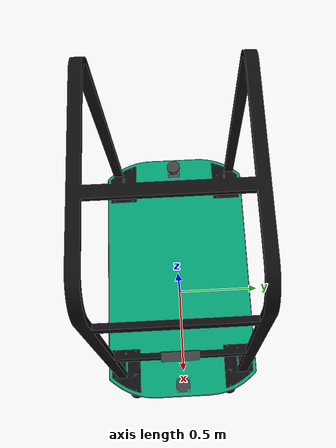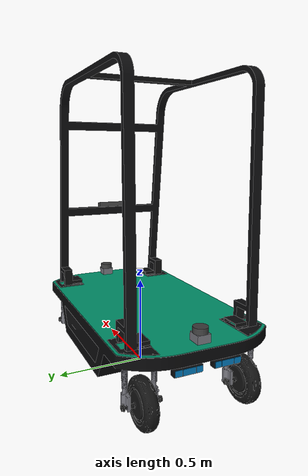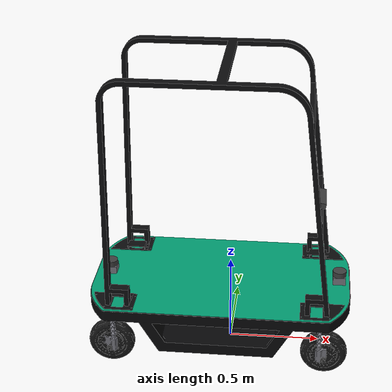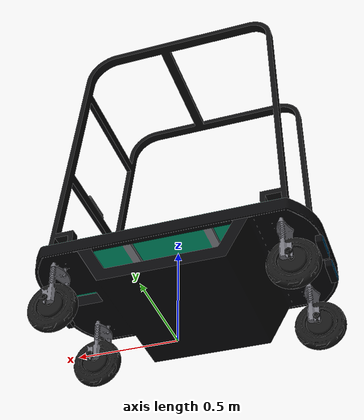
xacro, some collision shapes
<?xml version="1.0"?>
<robot xmlns:xacro="http://www.ros.org/wiki/xacro" name="tadeocar">

  <!-- ==================== PARAMETERS ==================== -->

  <xacro:property name="wheel_radius" value="0.125"/>
  <xacro:property name="wheel_width" value="0.200"/>

  <xacro:property name="front_x" value="0.478"/>
  <xacro:property name="rear_x" value="-0.580"/>
  <xacro:property name="half_track" value="0.275"/>

  <xacro:property name="steer_trail" value="0.05"/>

  <xacro:property name="deck_z" value="0.155"/>
  <xacro:property name="deck_len" value="1.418"/>
  <xacro:property name="deck_width" value="0.815"/>
  <xacro:property name="deck_height" value="0.246"/>
  <xacro:property name="deck_x" value="-0.048"/>   <!-- centre of [-0.757, 0.661] -->
  <!-- Top face of the deck rim, and the tread plate that sits on it. -->
  <xacro:property name="deck_top" value="0.264"/>   <!-- 0.389 m above ground -->
  <xacro:property name="plate_t" value="0.003"/>   <!-- tread plate -->

  <xacro:property name="lidar_x" value="0.60"/>
  <xacro:property name="lidar_z" value="0.325"/>   <!-- 0.450 m above ground -->
  <xacro:property name="rear_lidar_x" value="-0.675"/>
  <xacro:property name="zed_x" value="0.479"/>     <!-- over the lower front cross tube -->
  <xacro:property name="zed_z" value="0.782"/>     <!-- 0.907 m above ground -->
  <xacro:property name="zed_pitch" value="0.17453"/>  <!-- 10 degrees down -->
  <xacro:property name="zed_baseline" value="0.12"/>

  <material name="deck_black"><color rgba="0.03 0.03 0.035 1.0"/></material>
  <material name="wheel_black"><color rgba="0.08 0.08 0.08 1.0"/></material>
  <material name="strut_grey"><color rgba="0.45 0.45 0.48 1.0"/></material>
  <material name="sensor_grey"><color rgba="0.25 0.25 0.25 1.0"/></material>
  <material name="frame_steel"><color rgba="0.05 0.05 0.055 1.0"/></material>

  <!-- ==================== BASE ==================== -->

  <link name="base_footprint"/>

  <joint name="base_footprint_joint" type="fixed">
    <parent link="base_footprint"/>
    <child link="base_link"/>
    <origin xyz="0 0 ${wheel_radius}" rpy="0 0 0"/>
  </joint>

  <link name="base_link">
    <visual name="deck_visual">
      <origin xyz="0 0 ${deck_z}" rpy="0 0 0"/>
      <geometry>
        <mesh filename="package://tadeocar_description/meshes/chassis/chasis_base.dae"
              scale="1 1 1"/>
      </geometry>
      <material name="deck_black"/>
    </visual>
    <collision name="deck_collision">
      <origin xyz="${deck_x} 0 ${deck_z - 0.014}" rpy="0 0 0"/>
      <geometry>
        <box size="${deck_len} ${deck_width} ${deck_height}"/>
      </geometry>
    </collision>
  </link>

  <!-- ==================== DECK PLATE ==================== -->
  <link name="deck_plate_link">
    <visual name="deck_plate_visual">
      <origin xyz="0 0 0" rpy="0 0 0"/>
      <geometry>
        <mesh filename="package://tadeocar_description/meshes/chassis/deck_plate.dae"/>
      </geometry>
    </visual>
    <collision name="deck_plate_collision">
      <origin xyz="-0.05 0 ${deck_top + plate_t / 2}" rpy="0 0 0"/>
      <geometry><box size="1.34 0.76 ${plate_t}"/></geometry>
    </collision>
  </link>

  <joint name="deck_plate_joint" type="fixed">
    <parent link="base_link"/>
    <child link="deck_plate_link"/>
    <origin xyz="0 0 0" rpy="0 0 0"/>
  </joint>

  <!-- ==================== UPPER CHASSIS ==================== -->

  <link name="upper_chassis_link">
    <visual name="upper_chassis_visual">
      <origin xyz="-0.4354 0.3925 0" rpy="${pi/2} 0 ${pi}"/>
      <geometry>
        <mesh filename="package://tadeocar_description/meshes/chassis/chasis.dae"
              scale="0.001 0.001 0.001"/>
      </geometry>
      <material name="frame_steel"/>
    </visual>
    <!-- One box per tube, not the mesh. -->
    <xacro:macro name="arc_box" params="name x y z sx sy sz pitch:=0">
      <collision name="${name}">
        <origin xyz="${x} ${y} ${z}" rpy="0 ${pitch} 0"/>
        <geometry><box size="${sx} ${sy} ${sz}"/></geometry>
      </collision>
    </xacro:macro>
    <xacro:arc_box name="arc_post_rear_left"   x="-0.570" y="0.325"  z="0.6325" sx="0.025" sy="0.050" sz="1.265"/>
    <xacro:arc_box name="arc_post_rear_right"  x="-0.570" y="-0.325" z="0.6325" sx="0.025" sy="0.050" sz="1.265"/>
    <xacro:arc_box name="arc_post_front_left"  x="0.506"  y="0.325"  z="0.6325" sx="0.025" sy="0.050" sz="1.274" pitch="-0.117"/>
    <xacro:arc_box name="arc_post_front_right" x="0.506"  y="-0.325" z="0.6325" sx="0.025" sy="0.050" sz="1.274" pitch="-0.117"/>
    <xacro:arc_box name="arc_roof_left"        x="-0.0695" y="0.3275"  z="1.2525" sx="0.983" sy="0.050" sz="0.025"/>
    <xacro:arc_box name="arc_roof_right"       x="-0.0695" y="-0.3275" z="1.2525" sx="0.983" sy="0.050" sz="0.025"/>
    <xacro:arc_box name="arc_roof_cross"       x="0.026"  y="0" z="1.2525" sx="0.050" sy="0.705" sz="0.025"/>
    <xacro:arc_box name="arc_front_cross_low"  x="0.527"  y="0" z="0.465"  sx="0.031" sy="0.650" sz="0.050"/>
    <xacro:arc_box name="arc_front_cross_high" x="0.459"  y="0" z="1.023"  sx="0.031" sy="0.650" sz="0.050"/>
    <!-- The base is four corner foot plates, not a ring: nothing crosses the
         ends, which is what leaves the LiDAR masts room at x = 0. -->
    <xacro:arc_box name="arc_foot_front_left"  x="0.558"  y="0.310"  z="0.015" sx="0.236" sy="0.156" sz="0.030"/>
    <xacro:arc_box name="arc_foot_front_right" x="0.558"  y="-0.310" z="0.015" sx="0.236" sy="0.156" sz="0.030"/>
    <xacro:arc_box name="arc_foot_rear_left"   x="-0.558" y="0.310"  z="0.015" sx="0.236" sy="0.156" sz="0.030"/>
    <xacro:arc_box name="arc_foot_rear_right"  x="-0.558" y="-0.310" z="0.015" sx="0.236" sy="0.156" sz="0.030"/>
  </link>

  <joint name="upper_chassis_joint" type="fixed">
    <parent link="base_link"/>
    <child link="upper_chassis_link"/>
    <origin xyz="${deck_x} 0 ${deck_top + plate_t}" rpy="0 0 0"/>
  </joint>

  <link name="lamps_link">
    <visual name="headlamp_left_housing">
      <origin xyz="0.655 0.07 0.178" rpy="0 0 0"/>
      <geometry><mesh filename="package://tadeocar_description/meshes/lamps/headlamp_housing.dae"/></geometry>
    </visual>
    <visual name="headlamp_left_headlamp_lens">
      <origin xyz="0.655 0.07 0.178" rpy="0 0 0"/>
      <geometry><mesh filename="package://tadeocar_description/meshes/lamps/headlamp_lens.dae"/></geometry>
    </visual>
    <visual name="headlamp_left_bracket">
      <origin xyz="0.6325 0.07 0.202" rpy="0 0 0"/>
      <geometry><box size="0.020 0.054 0.008"/></geometry>
      <material name="deck_black"/>
    </visual>
    <visual name="turn_front_left_housing">
      <origin xyz="0.655 0.15 0.182" rpy="0 0 0"/>
      <geometry><mesh filename="package://tadeocar_description/meshes/lamps/turn_housing.dae"/></geometry>
    </visual>
    <visual name="turn_front_left_turn_lens">
      <origin xyz="0.655 0.15 0.182" rpy="0 0 0"/>
      <geometry><mesh filename="package://tadeocar_description/meshes/lamps/turn_lens.dae"/></geometry>
    </visual>
    <visual name="turn_front_left_bracket">
      <origin xyz="0.64 0.15 0.202" rpy="0 0 0"/>
      <geometry><box size="0.020 0.033 0.008"/></geometry>
      <material name="deck_black"/>
    </visual>
    <visual name="tail_left_housing">
      <origin xyz="-0.752 0.103 0.178" rpy="3.1415927 0 3.1415927"/>
      <geometry><mesh filename="package://tadeocar_description/meshes/lamps/tail_combo_housing.dae"/></geometry>
    </visual>
    <visual name="tail_left_reverse_lens">
      <origin xyz="-0.752 0.103 0.178" rpy="3.1415927 0 3.1415927"/>
      <geometry><mesh filename="package://tadeocar_description/meshes/lamps/tail_reverse_lens.dae"/></geometry>
    </visual>
    <visual name="tail_left_stop_lens">
      <origin xyz="-0.752 0.103 0.178" rpy="3.1415927 0 3.1415927"/>
      <geometry><mesh filename="package://tadeocar_description/meshes/lamps/tail_stop_lens.dae"/></geometry>
    </visual>
    <visual name="tail_left_turn_lens">
      <origin xyz="-0.752 0.103 0.178" rpy="3.1415927 0 3.1415927"/>
      <geometry><mesh filename="package://tadeocar_description/meshes/lamps/tail_turn_lens.dae"/></geometry>
    </visual>
    <visual name="tail_left_bracket">
      <origin xyz="-0.736 0.103 0.202" rpy="0 0 0"/>
      <geometry><box size="0.020 0.09 0.008"/></geometry>
      <material name="deck_black"/>
    </visual>
    <visual name="headlamp_right_housing">
      <origin xyz="0.655 -0.07 0.178" rpy="0 0 0"/>
      <geometry><mesh filename="package://tadeocar_description/meshes/lamps/headlamp_housing.dae"/></geometry>
    </visual>
    <visual name="headlamp_right_headlamp_lens">
      <origin xyz="0.655 -0.07 0.178" rpy="0 0 0"/>
      <geometry><mesh filename="package://tadeocar_description/meshes/lamps/headlamp_lens.dae"/></geometry>
    </visual>
    <visual name="headlamp_right_bracket">
      <origin xyz="0.6325 -0.07 0.202" rpy="0 0 0"/>
      <geometry><box size="0.020 0.054 0.008"/></geometry>
      <material name="deck_black"/>
    </visual>
    <visual name="turn_front_right_housing">
      <origin xyz="0.655 -0.15 0.182" rpy="0 0 0"/>
      <geometry><mesh filename="package://tadeocar_description/meshes/lamps/turn_housing.dae"/></geometry>
    </visual>
    <visual name="turn_front_right_turn_lens">
      <origin xyz="0.655 -0.15 0.182" rpy="0 0 0"/>
      <geometry><mesh filename="package://tadeocar_description/meshes/lamps/turn_lens.dae"/></geometry>
    </visual>
    <visual name="turn_front_right_bracket">
      <origin xyz="0.64 -0.15 0.202" rpy="0 0 0"/>
      <geometry><box size="0.020 0.033 0.008"/></geometry>
      <material name="deck_black"/>
    </visual>
    <visual name="tail_right_housing">
      <origin xyz="-0.752 -0.103 0.178" rpy="0 0 3.1415927"/>
      <geometry><mesh filename="package://tadeocar_description/meshes/lamps/tail_combo_housing.dae"/></geometry>
    </visual>
    <visual name="tail_right_reverse_lens">
      <origin xyz="-0.752 -0.103 0.178" rpy="0 0 3.1415927"/>
      <geometry><mesh filename="package://tadeocar_description/meshes/lamps/tail_reverse_lens.dae"/></geometry>
    </visual>
    <visual name="tail_right_stop_lens">
      <origin xyz="-0.752 -0.103 0.178" rpy="0 0 3.1415927"/>
      <geometry><mesh filename="package://tadeocar_description/meshes/lamps/tail_stop_lens.dae"/></geometry>
    </visual>
    <visual name="tail_right_turn_lens">
      <origin xyz="-0.752 -0.103 0.178" rpy="0 0 3.1415927"/>
      <geometry><mesh filename="package://tadeocar_description/meshes/lamps/tail_turn_lens.dae"/></geometry>
    </visual>
    <visual name="tail_right_bracket">
      <origin xyz="-0.736 -0.103 0.202" rpy="0 0 0"/>
      <geometry><box size="0.020 0.09 0.008"/></geometry>
      <material name="deck_black"/>
    </visual>
  </link>
  <joint name="lamps_joint" type="fixed">
    <parent link="base_link"/>
    <child link="lamps_link"/>
    <origin xyz="0 0 0" rpy="0 0 0"/>
  </joint>

  <!-- ==================== SENSOR MAST ==================== -->

  <link name="sensor_mast_link">
    <visual>
      <origin xyz="0 0 0" rpy="0 0 0"/>
      <geometry><box size="0.07 0.07 0.09"/></geometry>
      <material name="strut_grey"/>
    </visual>
    <collision>
      <origin xyz="0 0 0" rpy="0 0 0"/>
      <geometry><box size="0.07 0.07 0.09"/></geometry>
    </collision>
  </link>

  <joint name="sensor_mast_joint" type="fixed">
    <parent link="base_link"/>
    <child link="sensor_mast_link"/>
    <origin xyz="${lidar_x} 0 ${lidar_z - 0.06}" rpy="0 0 0"/>
  </joint>

  <!-- ==================== LiDAR (YDLIDAR X2) ==================== -->

  <link name="base_scan">
    <visual>
      <geometry><cylinder radius="0.0375" length="0.030"/></geometry>
      <material name="sensor_grey"/>
    </visual>
    <collision>
      <geometry><cylinder radius="0.0375" length="0.030"/></geometry>
    </collision>
  </link>

  <joint name="lidar_joint" type="fixed">
    <parent link="base_link"/>
    <child link="base_scan"/>
    <origin xyz="${lidar_x} 0 ${lidar_z}" rpy="0 0 0"/>
  </joint>

  <!-- ==================== REAR LiDAR (YDLIDAR X2) ==================== -->
  <!-- The same sensor as the front one, turned to face back. -->
  <link name="sensor_mast_rear_link">
    <visual>
      <origin xyz="0 0 0" rpy="0 0 0"/>
      <geometry><box size="0.07 0.07 0.09"/></geometry>
      <material name="strut_grey"/>
    </visual>
    <collision>
      <origin xyz="0 0 0" rpy="0 0 0"/>
      <geometry><box size="0.07 0.07 0.09"/></geometry>
    </collision>
  </link>

  <joint name="sensor_mast_rear_joint" type="fixed">
    <parent link="base_link"/>
    <child link="sensor_mast_rear_link"/>
    <origin xyz="${rear_lidar_x} 0 ${lidar_z - 0.06}" rpy="0 0 0"/>
  </joint>

  <link name="base_scan_rear">
    <visual>
      <geometry><cylinder radius="0.0375" length="0.030"/></geometry>
      <material name="sensor_grey"/>
    </visual>
    <collision>
      <geometry><cylinder radius="0.0375" length="0.030"/></geometry>
    </collision>
  </link>

  <joint name="lidar_rear_joint" type="fixed">
    <parent link="base_link"/>
    <child link="base_scan_rear"/>
    <origin xyz="${rear_lidar_x} 0 ${lidar_z}" rpy="0 0 ${pi}"/>
  </joint>

  <link name="base_scan_merged"/>
  <joint name="scan_merged_joint" type="fixed">
    <parent link="base_link"/>
    <child link="base_scan_merged"/>
    <origin xyz="${(lidar_x + rear_lidar_x) / 2} 0 ${lidar_z}" rpy="0 0 0"/>
  </joint>

  <!-- ==================== ZED 2i ==================== -->
  <link name="zed2i_camera_link">
    <visual>
      <origin xyz="0 0 0" rpy="0 0 0"/>
      <geometry>
        <mesh filename="package://tadeocar_description/meshes/sensors/zed2i.stl"
              scale="1 1 1"/>
      </geometry>
      <material name="sensor_grey"/>
    </visual>
    <collision>
      <origin xyz="0.004 0 0" rpy="0 0 0"/>
      <geometry><box size="0.043 0.175 0.030"/></geometry>
    </collision>
  </link>

  <joint name="zed2i_camera_joint" type="fixed">
    <parent link="base_link"/>
    <child link="zed2i_camera_link"/>
    <origin xyz="${zed_x} 0 ${zed_z}" rpy="0 ${zed_pitch} 0"/>
  </joint>

  <link name="zed2i_left_camera_frame"/>
  <joint name="zed2i_left_camera_joint" type="fixed">
    <parent link="zed2i_camera_link"/>
    <child link="zed2i_left_camera_frame"/>
    <origin xyz="0 ${zed_baseline / 2} 0" rpy="0 0 0"/>
  </joint>

  <link name="zed2i_left_camera_optical_frame"/>
  <joint name="zed2i_left_camera_optical_joint" type="fixed">
    <parent link="zed2i_left_camera_frame"/>
    <child link="zed2i_left_camera_optical_frame"/>
    <origin xyz="0 0 0" rpy="${-pi/2} 0 ${-pi/2}"/>
  </joint>

  <link name="zed2i_right_camera_frame"/>
  <joint name="zed2i_right_camera_joint" type="fixed">
    <parent link="zed2i_camera_link"/>
    <child link="zed2i_right_camera_frame"/>
    <origin xyz="0 ${-zed_baseline / 2} 0" rpy="0 0 0"/>
  </joint>

  <link name="zed2i_right_camera_optical_frame"/>
  <joint name="zed2i_right_camera_optical_joint" type="fixed">
    <parent link="zed2i_right_camera_frame"/>
    <child link="zed2i_right_camera_optical_frame"/>
    <origin xyz="0 0 0" rpy="${-pi/2} 0 ${-pi/2}"/>
  </joint>

  <link name="zed2i_imu_link"/>
  <joint name="zed2i_imu_joint" type="fixed">
    <parent link="zed2i_camera_link"/>
    <child link="zed2i_imu_link"/>
    <origin xyz="-0.002 0 0" rpy="0 0 0"/>
  </joint>

  <!-- ==================== WHEEL MODULES ==================== -->
  <!-- One macro, four calls. Writing these out by hand is how the model ended
       up with three different steering-link orientations for four wheels that
       are mechanically identical. -->
  <xacro:macro name="wheel_module" params="prefix x y trail_sign yaw_flip">
    <link name="${prefix}_steering_link">
      <visual>
        <origin xyz="0 0 0.227" rpy="0 ${pi} ${yaw_flip}"/>
        <geometry>
          <mesh filename="package://tadeocar_description/meshes/suspension/suspension.dae"
                scale="1 1 1"/>
        </geometry>
        <material name="strut_grey"/>
      </visual>
      <collision>
        <origin xyz="0 0 0.10" rpy="0 0 0"/>
        <geometry><box size="0.10 0.18 0.20"/></geometry>
      </collision>
    </link>

    <joint name="${prefix}_steering_joint" type="revolute">
      <parent link="base_link"/>
      <child link="${prefix}_steering_link"/>
      <origin xyz="${x} ${y} 0" rpy="0 0 0"/>
      <axis xyz="0 0 1"/>
      <limit lower="${-2.356}" upper="${2.356}" effort="100.0" velocity="1.0"/>
    </joint>

    <link name="${prefix}_wheel_link">
      <visual>
        <origin xyz="0 0 0" rpy="${pi/2} 0 0"/>
        <geometry>
          <mesh filename="package://tadeocar_description/meshes/wheels/wheel.dae"
                scale="1 1 1"/>
        </geometry>
        <material name="wheel_black"/>
      </visual>
      <collision>
        <origin xyz="0 0 0" rpy="${pi/2} 0 0"/>
        <geometry><cylinder radius="${wheel_radius}" length="${wheel_width}"/></geometry>
      </collision>
    </link>

    <joint name="${prefix}_wheel_joint" type="continuous">
      <parent link="${prefix}_steering_link"/>
      <child link="${prefix}_wheel_link"/>
      <origin xyz="${trail_sign * steer_trail} 0 0" rpy="0 0 0"/>
      <axis xyz="0 1 0"/>
    </joint>
  </xacro:macro>

  <xacro:wheel_module prefix="front_left"  x="${front_x}" y="${half_track}"  trail_sign="1"  yaw_flip="${pi}"/>
  <xacro:wheel_module prefix="front_right" x="${front_x}" y="${-half_track}" trail_sign="1"  yaw_flip="${-pi}"/>
  <xacro:wheel_module prefix="rear_left"   x="${rear_x}"  y="${half_track}"  trail_sign="-1" yaw_flip="0"/>
  <xacro:wheel_module prefix="rear_right"  x="${rear_x}"  y="${-half_track}" trail_sign="-1" yaw_flip="0"/>

</robot>
